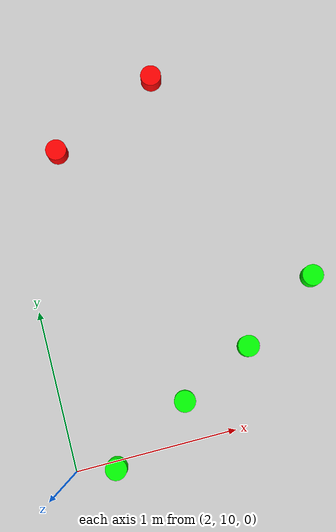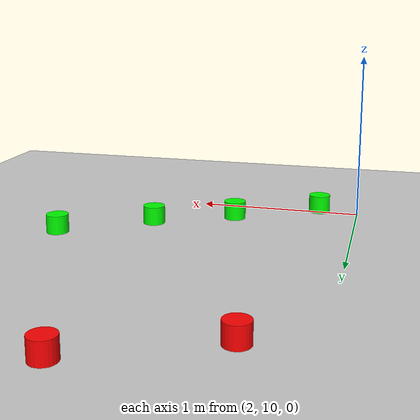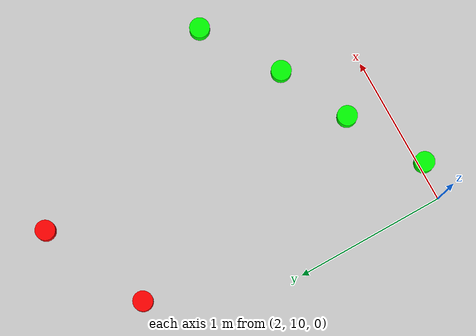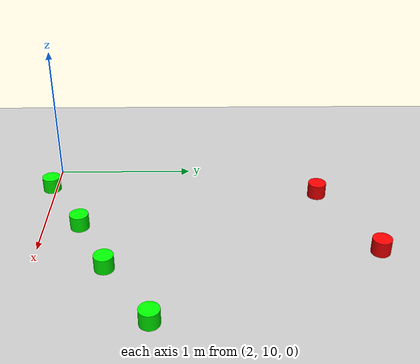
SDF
<sdf version="1.7">
 <world name="default">
  <model name="ground_plane">
   <static>1</static>
   <link name="link">
    <collision name="collision">
     <geometry><plane><normal>0 0 1</normal><size>100 100</size></plane></geometry>
     <surface>
      <contact><collide_bitmask>65535</collide_bitmask></contact>
      <friction><ode><mu>100</mu><mu2>50</mu2></ode></friction>
     </surface>
    </collision>
    <visual name="visual">
     <cast_shadows>0</cast_shadows>
     <geometry><plane><normal>0 0 1</normal><size>100 100</size></plane></geometry>
     <material>
      <script><uri>file://media/materials/scripts/gazebo.material</uri><name>Gazebo/Grey</name></script>
     </material>
    </visual>
   </link>
  </model>
  <model name="latinha_verde_clone_8_clone_2_clone_2_clone_7">
   <link name="link">
    <inertial>
     <mass>1</mass>
     <inertia><ixx>0.145833</ixx><ixy>0</ixy><ixz>0</ixz><iyy>0.145833</iyy><iyz>0</iyz><izz>0.125</izz></inertia>
    </inertial>
    <visual name="visual">
     <geometry><cylinder><radius>0.066</radius><length>0.114</length></cylinder></geometry>
     <material>
      <script><name>Gazebo/Gray</name><uri>file://media/materials/scripts/gazebo.material</uri></script>
      <shader type="pixel"><normal_map>__default__</normal_map></shader>
      <ambient>0 1 0 1</ambient>
      <diffuse>0 1 0 1</diffuse>
      <specular>0.1 0.1 0.1 1</specular>
      <emissive>0 0 0 1</emissive>
     </material>
    </visual>
    <collision name="collision">
     <geometry><cylinder><radius>0.05</radius><length>0.1</length></cylinder></geometry>
     <surface>
      <friction>
       <ode><mu>1</mu><mu2>1</mu2><fdir1>0 0 0</fdir1><slip1>0</slip1><slip2>0</slip2></ode>
       <torsional>
        <coefficient>1</coefficient>
        <patch_radius>0</patch_radius>
        <surface_radius>0</surface_radius>
        <use_patch_radius>1</use_patch_radius>
        <ode><slip>0</slip></ode>
       </torsional>
      </friction>
      <bounce><restitution_coefficient>0</restitution_coefficient><threshold>1e+06</threshold></bounce>
      <contact>
       <collide_without_contact>0</collide_without_contact>
       <collide_without_contact_bitmask>1</collide_without_contact_bitmask>
       <collide_bitmask>1</collide_bitmask>
       <ode>
        <soft_cfm>0</soft_cfm>
        <soft_erp>0.2</soft_erp>
        <kp>1e+13</kp>
        <kd>1</kd>
        <max_vel>0.01</max_vel>
        <min_depth>0</min_depth>
       </ode>
       <bullet>
        <split_impulse>1</split_impulse>
        <split_impulse_penetration_threshold>-0.01</split_impulse_penetration_threshold>
        <soft_cfm>0</soft_cfm>
        <soft_erp>0.2</soft_erp>
        <kp>1e+13</kp>
        <kd>1</kd>
       </bullet>
      </contact>
     </surface>
    </collision>
   </link>
   <static>0</static>
   <pose>3.70001 10.7919 0.05 0 -0 0.000118</pose>
  </model>
  <model name="latinha_verde_clone_8_clone_2_clone_2_clone_8">
   <link name="link">
    <inertial>
     <mass>1</mass>
     <inertia><ixx>0.145833</ixx><ixy>0</ixy><ixz>0</ixz><iyy>0.145833</iyy><iyz>0</iyz><izz>0.125</izz></inertia>
    </inertial>
    <visual name="visual">
     <geometry><cylinder><radius>0.066</radius><length>0.114</length></cylinder></geometry>
     <material>
      <script><name>Gazebo/Gray</name><uri>file://media/materials/scripts/gazebo.material</uri></script>
      <shader type="pixel"><normal_map>__default__</normal_map></shader>
      <ambient>0 1 0 1</ambient>
      <diffuse>0 1 0 1</diffuse>
      <specular>0.1 0.1 0.1 1</specular>
      <emissive>0 0 0 1</emissive>
     </material>
    </visual>
    <collision name="collision">
     <geometry><cylinder><radius>0.05</radius><length>0.1</length></cylinder></geometry>
     <surface>
      <friction>
       <ode><mu>1</mu><mu2>1</mu2><fdir1>0 0 0</fdir1><slip1>0</slip1><slip2>0</slip2></ode>
       <torsional>
        <coefficient>1</coefficient>
        <patch_radius>0</patch_radius>
        <surface_radius>0</surface_radius>
        <use_patch_radius>1</use_patch_radius>
        <ode><slip>0</slip></ode>
       </torsional>
      </friction>
      <bounce><restitution_coefficient>0</restitution_coefficient><threshold>1e+06</threshold></bounce>
      <contact>
       <collide_without_contact>0</collide_without_contact>
       <collide_without_contact_bitmask>1</collide_without_contact_bitmask>
       <collide_bitmask>1</collide_bitmask>
       <ode>
        <soft_cfm>0</soft_cfm>
        <soft_erp>0.2</soft_erp>
        <kp>1e+13</kp>
        <kd>1</kd>
        <max_vel>0.01</max_vel>
        <min_depth>0</min_depth>
       </ode>
       <bullet>
        <split_impulse>1</split_impulse>
        <split_impulse_penetration_threshold>-0.01</split_impulse_penetration_threshold>
        <soft_cfm>0</soft_cfm>
        <soft_erp>0.2</soft_erp>
        <kp>1e+13</kp>
        <kd>1</kd>
       </bullet>
      </contact>
     </surface>
    </collision>
   </link>
   <static>0</static>
   <pose>3.20353 10.4723 0.05 0 -0 0.000118</pose>
  </model>
  <model name="latinha_verde_clone_8_clone_2_clone_2_clone_9">
   <link name="link">
    <inertial>
     <mass>1</mass>
     <inertia><ixx>0.145833</ixx><ixy>0</ixy><ixz>0</ixz><iyy>0.145833</iyy><iyz>0</iyz><izz>0.125</izz></inertia>
    </inertial>
    <visual name="visual">
     <geometry><cylinder><radius>0.066</radius><length>0.114</length></cylinder></geometry>
     <material>
      <script><name>Gazebo/Gray</name><uri>file://media/materials/scripts/gazebo.material</uri></script>
      <shader type="pixel"><normal_map>__default__</normal_map></shader>
      <ambient>0 1 0 1</ambient>
      <diffuse>0 1 0 1</diffuse>
      <specular>0.1 0.1 0.1 1</specular>
      <emissive>0 0 0 1</emissive>
     </material>
    </visual>
    <collision name="collision">
     <geometry><cylinder><radius>0.05</radius><length>0.1</length></cylinder></geometry>
     <surface>
      <friction>
       <ode><mu>1</mu><mu2>1</mu2><fdir1>0 0 0</fdir1><slip1>0</slip1><slip2>0</slip2></ode>
       <torsional>
        <coefficient>1</coefficient>
        <patch_radius>0</patch_radius>
        <surface_radius>0</surface_radius>
        <use_patch_radius>1</use_patch_radius>
        <ode><slip>0</slip></ode>
       </torsional>
      </friction>
      <bounce><restitution_coefficient>0</restitution_coefficient><threshold>1e+06</threshold></bounce>
      <contact>
       <collide_without_contact>0</collide_without_contact>
       <collide_without_contact_bitmask>1</collide_without_contact_bitmask>
       <collide_bitmask>1</collide_bitmask>
       <ode>
        <soft_cfm>0</soft_cfm>
        <soft_erp>0.2</soft_erp>
        <kp>1e+13</kp>
        <kd>1</kd>
        <max_vel>0.01</max_vel>
        <min_depth>0</min_depth>
       </ode>
       <bullet>
        <split_impulse>1</split_impulse>
        <split_impulse_penetration_threshold>-0.01</split_impulse_penetration_threshold>
        <soft_cfm>0</soft_cfm>
        <soft_erp>0.2</soft_erp>
        <kp>1e+13</kp>
        <kd>1</kd>
       </bullet>
      </contact>
     </surface>
    </collision>
   </link>
   <static>0</static>
   <pose>2.7434 10.2486 0.05 0 -0 0.000118</pose>
  </model>
  <model name="latinha_verde_clone_8_clone_2_clone_2_clone_10">
   <link name="link">
    <inertial>
     <mass>1</mass>
     <inertia><ixx>0.145833</ixx><ixy>0</ixy><ixz>0</ixz><iyy>0.145833</iyy><iyz>0</iyz><izz>0.125</izz></inertia>
    </inertial>
    <visual name="visual">
     <geometry><cylinder><radius>0.066</radius><length>0.114</length></cylinder></geometry>
     <material>
      <script><name>Gazebo/Gray</name><uri>file://media/materials/scripts/gazebo.material</uri></script>
      <shader type="pixel"><normal_map>__default__</normal_map></shader>
      <ambient>0 1 0 1</ambient>
      <diffuse>0 1 0 1</diffuse>
      <specular>0.1 0.1 0.1 1</specular>
      <emissive>0 0 0 1</emissive>
     </material>
    </visual>
    <collision name="collision">
     <geometry><cylinder><radius>0.05</radius><length>0.1</length></cylinder></geometry>
     <surface>
      <friction>
       <ode><mu>1</mu><mu2>1</mu2><fdir1>0 0 0</fdir1><slip1>0</slip1><slip2>0</slip2></ode>
       <torsional>
        <coefficient>1</coefficient>
        <patch_radius>0</patch_radius>
        <surface_radius>0</surface_radius>
        <use_patch_radius>1</use_patch_radius>
        <ode><slip>0</slip></ode>
       </torsional>
      </friction>
      <bounce><restitution_coefficient>0</restitution_coefficient><threshold>1e+06</threshold></bounce>
      <contact>
       <collide_without_contact>0</collide_without_contact>
       <collide_without_contact_bitmask>1</collide_without_contact_bitmask>
       <collide_bitmask>1</collide_bitmask>
       <ode>
        <soft_cfm>0</soft_cfm>
        <soft_erp>0.2</soft_erp>
        <kp>1e+13</kp>
        <kd>1</kd>
        <max_vel>0.01</max_vel>
        <min_depth>0</min_depth>
       </ode>
       <bullet>
        <split_impulse>1</split_impulse>
        <split_impulse_penetration_threshold>-0.01</split_impulse_penetration_threshold>
        <soft_cfm>0</soft_cfm>
        <soft_erp>0.2</soft_erp>
        <kp>1e+13</kp>
        <kd>1</kd>
       </bullet>
      </contact>
     </surface>
    </collision>
   </link>
   <static>0</static>
   <pose>2.24505 9.96577 0.05 0 -0 0.000118</pose>
  </model>
  <model name="latinha_verm_clone_5_clone_0_clone_clone_7_clone_3_clone_9">
   <link name="link">
    <inertial>
     <mass>1</mass>
     <inertia><ixx>0.145833</ixx><ixy>0</ixy><ixz>0</ixz><iyy>0.145833</iyy><iyz>0</iyz><izz>0.125</izz></inertia>
    </inertial>
    <visual name="visual">
     <geometry><cylinder><radius>0.066</radius><length>0.114</length></cylinder></geometry>
     <material>
      <script><name>Gazebo/Gray</name><uri>file://media/materials/scripts/gazebo.material</uri></script>
      <shader type="pixel"><normal_map>__default__</normal_map></shader>
      <ambient>1 0 0 1</ambient>
      <diffuse>1 0 0 1</diffuse>
      <specular>0.1 0.1 0.1 1</specular>
      <emissive>0 0 0 1</emissive>
     </material>
    </visual>
    <collision name="collision">
     <geometry><cylinder><radius>0.05</radius><length>0.1</length></cylinder></geometry>
     <surface>
      <friction>
       <ode><mu>1</mu><mu2>1</mu2><fdir1>0 0 0</fdir1><slip1>0</slip1><slip2>0</slip2></ode>
       <torsional>
        <coefficient>1</coefficient>
        <patch_radius>0</patch_radius>
        <surface_radius>0</surface_radius>
        <use_patch_radius>1</use_patch_radius>
        <ode><slip>0</slip></ode>
       </torsional>
      </friction>
      <bounce><restitution_coefficient>0</restitution_coefficient><threshold>1e+06</threshold></bounce>
      <contact>
       <collide_without_contact>0</collide_without_contact>
       <collide_without_contact_bitmask>1</collide_without_contact_bitmask>
       <collide_bitmask>1</collide_bitmask>
       <ode>
        <soft_cfm>0</soft_cfm>
        <soft_erp>0.2</soft_erp>
        <kp>1e+13</kp>
        <kd>1</kd>
        <max_vel>0.01</max_vel>
        <min_depth>0</min_depth>
       </ode>
       <bullet>
        <split_impulse>1</split_impulse>
        <split_impulse_penetration_threshold>-0.01</split_impulse_penetration_threshold>
        <soft_cfm>0</soft_cfm>
        <soft_erp>0.2</soft_erp>
        <kp>1e+13</kp>
        <kd>1</kd>
       </bullet>
      </contact>
     </surface>
    </collision>
   </link>
   <static>0</static>
   <pose>3.04916 12.2812 0.049996 0 -0 2.9e-05</pose>
  </model>
  <model name="latinha_verm_clone_5_clone_0_clone_clone_7_clone_3_clone_10">
   <link name="link">
    <inertial>
     <mass>1</mass>
     <inertia><ixx>0.145833</ixx><ixy>0</ixy><ixz>0</ixz><iyy>0.145833</iyy><iyz>0</iyz><izz>0.125</izz></inertia>
    </inertial>
    <visual name="visual">
     <geometry><cylinder><radius>0.066</radius><length>0.114</length></cylinder></geometry>
     <material>
      <script><name>Gazebo/Gray</name><uri>file://media/materials/scripts/gazebo.material</uri></script>
      <shader type="pixel"><normal_map>__default__</normal_map></shader>
      <ambient>1 0 0 1</ambient>
      <diffuse>1 0 0 1</diffuse>
      <specular>0.1 0.1 0.1 1</specular>
      <emissive>0 0 0 1</emissive>
     </material>
    </visual>
    <collision name="collision">
     <geometry><cylinder><radius>0.05</radius><length>0.1</length></cylinder></geometry>
     <surface>
      <friction>
       <ode><mu>1</mu><mu2>1</mu2><fdir1>0 0 0</fdir1><slip1>0</slip1><slip2>0</slip2></ode>
       <torsional>
        <coefficient>1</coefficient>
        <patch_radius>0</patch_radius>
        <surface_radius>0</surface_radius>
        <use_patch_radius>1</use_patch_radius>
        <ode><slip>0</slip></ode>
       </torsional>
      </friction>
      <bounce><restitution_coefficient>0</restitution_coefficient><threshold>1e+06</threshold></bounce>
      <contact>
       <collide_without_contact>0</collide_without_contact>
       <collide_without_contact_bitmask>1</collide_without_contact_bitmask>
       <collide_bitmask>1</collide_bitmask>
       <ode>
        <soft_cfm>0</soft_cfm>
        <soft_erp>0.2</soft_erp>
        <kp>1e+13</kp>
        <kd>1</kd>
        <max_vel>0.01</max_vel>
        <min_depth>0</min_depth>
       </ode>
       <bullet>
        <split_impulse>1</split_impulse>
        <split_impulse_penetration_threshold>-0.01</split_impulse_penetration_threshold>
        <soft_cfm>0</soft_cfm>
        <soft_erp>0.2</soft_erp>
        <kp>1e+13</kp>
        <kd>1</kd>
       </bullet>
      </contact>
     </surface>
    </collision>
   </link>
   <static>0</static>
   <pose>2.35263 11.9603 0.049996 0 -0 2.9e-05</pose>
  </model>
 </world>
</sdf>
